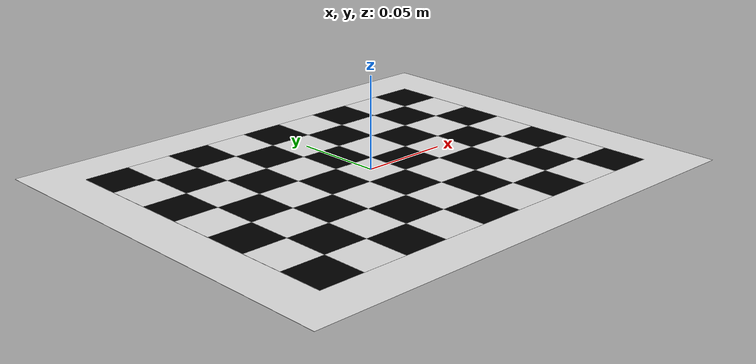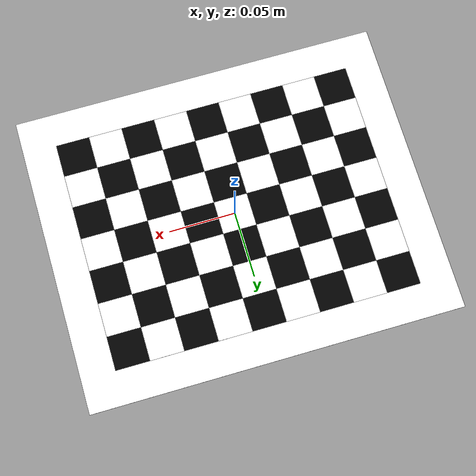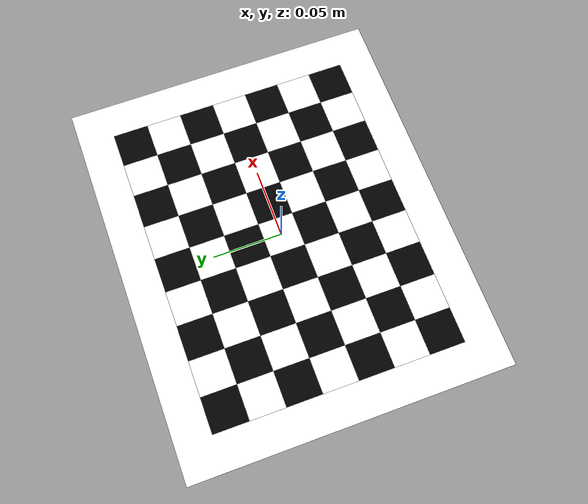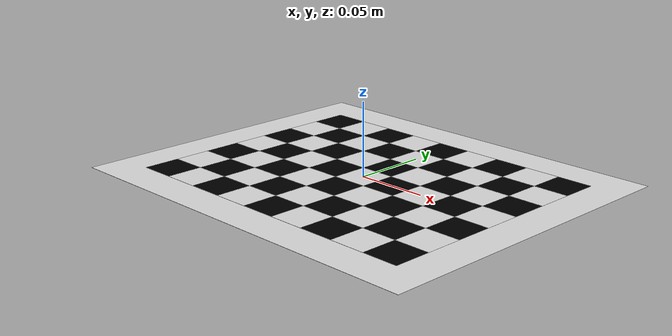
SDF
<?xml version="1.0"?>
<sdf version="1.4">
  <model name="checkerboard_9_7_0_0254">
  <static>true</static>
  <link name="checkerboard_9_7_0_0254_body">
      <visual name="checker_0_0">
        <pose>-0.1016 -0.07619999999999999 0 0 0 0</pose>
        <geometry>
          <box>
            <size>0.0254 0.0254 0.0002</size>
          </box>
        </geometry>
        <material>
          <ambient>0 0 0 1</ambient>
          <diffuse>0 0 0 1</diffuse>
          <specular>0 0 0 1</specular>
          <emissive>0 0 0 1</emissive>
        </material>
      </visual>
      <visual name="checker_0_1">
        <pose>-0.1016 -0.0508 0 0 0 0</pose>
        <geometry>
          <box>
            <size>0.0254 0.0254 0.0002</size>
          </box>
        </geometry>
        <material>
          <ambient>1 1 1 1</ambient>
          <diffuse>1 1 1 1</diffuse>
          <specular>1 1 1 1</specular>
          <emissive>1 1 1 1</emissive>
        </material>
      </visual>
      <visual name="checker_0_2">
        <pose>-0.1016 -0.025399999999999992 0 0 0 0</pose>
        <geometry>
          <box>
            <size>0.0254 0.0254 0.0002</size>
          </box>
        </geometry>
        <material>
          <ambient>0 0 0 1</ambient>
          <diffuse>0 0 0 1</diffuse>
          <specular>0 0 0 1</specular>
          <emissive>0 0 0 1</emissive>
        </material>
      </visual>
      <visual name="checker_0_3">
        <pose>-0.1016 0.0 0 0 0 0</pose>
        <geometry>
          <box>
            <size>0.0254 0.0254 0.0002</size>
          </box>
        </geometry>
        <material>
          <ambient>1 1 1 1</ambient>
          <diffuse>1 1 1 1</diffuse>
          <specular>1 1 1 1</specular>
          <emissive>1 1 1 1</emissive>
        </material>
      </visual>
      <visual name="checker_0_4">
        <pose>-0.1016 0.025400000000000006 0 0 0 0</pose>
        <geometry>
          <box>
            <size>0.0254 0.0254 0.0002</size>
          </box>
        </geometry>
        <material>
          <ambient>0 0 0 1</ambient>
          <diffuse>0 0 0 1</diffuse>
          <specular>0 0 0 1</specular>
          <emissive>0 0 0 1</emissive>
        </material>
      </visual>
      <visual name="checker_0_5">
        <pose>-0.1016 0.0508 0 0 0 0</pose>
        <geometry>
          <box>
            <size>0.0254 0.0254 0.0002</size>
          </box>
        </geometry>
        <material>
          <ambient>1 1 1 1</ambient>
          <diffuse>1 1 1 1</diffuse>
          <specular>1 1 1 1</specular>
          <emissive>1 1 1 1</emissive>
        </material>
      </visual>
      <visual name="checker_0_6">
        <pose>-0.1016 0.07619999999999998 0 0 0 0</pose>
        <geometry>
          <box>
            <size>0.0254 0.0254 0.0002</size>
          </box>
        </geometry>
        <material>
          <ambient>0 0 0 1</ambient>
          <diffuse>0 0 0 1</diffuse>
          <specular>0 0 0 1</specular>
          <emissive>0 0 0 1</emissive>
        </material>
      </visual>
      <visual name="checker_1_0">
        <pose>-0.0762 -0.07619999999999999 0 0 0 0</pose>
        <geometry>
          <box>
            <size>0.0254 0.0254 0.0002</size>
          </box>
        </geometry>
        <material>
          <ambient>1 1 1 1</ambient>
          <diffuse>1 1 1 1</diffuse>
          <specular>1 1 1 1</specular>
          <emissive>1 1 1 1</emissive>
        </material>
      </visual>
      <visual name="checker_1_1">
        <pose>-0.0762 -0.0508 0 0 0 0</pose>
        <geometry>
          <box>
            <size>0.0254 0.0254 0.0002</size>
          </box>
        </geometry>
        <material>
          <ambient>0 0 0 1</ambient>
          <diffuse>0 0 0 1</diffuse>
          <specular>0 0 0 1</specular>
          <emissive>0 0 0 1</emissive>
        </material>
      </visual>
      <visual name="checker_1_2">
        <pose>-0.0762 -0.025399999999999992 0 0 0 0</pose>
        <geometry>
          <box>
            <size>0.0254 0.0254 0.0002</size>
          </box>
        </geometry>
        <material>
          <ambient>1 1 1 1</ambient>
          <diffuse>1 1 1 1</diffuse>
          <specular>1 1 1 1</specular>
          <emissive>1 1 1 1</emissive>
        </material>
      </visual>
      <visual name="checker_1_3">
        <pose>-0.0762 0.0 0 0 0 0</pose>
        <geometry>
          <box>
            <size>0.0254 0.0254 0.0002</size>
          </box>
        </geometry>
        <material>
          <ambient>0 0 0 1</ambient>
          <diffuse>0 0 0 1</diffuse>
          <specular>0 0 0 1</specular>
          <emissive>0 0 0 1</emissive>
        </material>
      </visual>
      <visual name="checker_1_4">
        <pose>-0.0762 0.025400000000000006 0 0 0 0</pose>
        <geometry>
          <box>
            <size>0.0254 0.0254 0.0002</size>
          </box>
        </geometry>
        <material>
          <ambient>1 1 1 1</ambient>
          <diffuse>1 1 1 1</diffuse>
          <specular>1 1 1 1</specular>
          <emissive>1 1 1 1</emissive>
        </material>
      </visual>
      <visual name="checker_1_5">
        <pose>-0.0762 0.0508 0 0 0 0</pose>
        <geometry>
          <box>
            <size>0.0254 0.0254 0.0002</size>
          </box>
        </geometry>
        <material>
          <ambient>0 0 0 1</ambient>
          <diffuse>0 0 0 1</diffuse>
          <specular>0 0 0 1</specular>
          <emissive>0 0 0 1</emissive>
        </material>
      </visual>
      <visual name="checker_1_6">
        <pose>-0.0762 0.07619999999999998 0 0 0 0</pose>
        <geometry>
          <box>
            <size>0.0254 0.0254 0.0002</size>
          </box>
        </geometry>
        <material>
          <ambient>1 1 1 1</ambient>
          <diffuse>1 1 1 1</diffuse>
          <specular>1 1 1 1</specular>
          <emissive>1 1 1 1</emissive>
        </material>
      </visual>
      <visual name="checker_2_0">
        <pose>-0.0508 -0.07619999999999999 0 0 0 0</pose>
        <geometry>
          <box>
            <size>0.0254 0.0254 0.0002</size>
          </box>
        </geometry>
        <material>
          <ambient>0 0 0 1</ambient>
          <diffuse>0 0 0 1</diffuse>
          <specular>0 0 0 1</specular>
          <emissive>0 0 0 1</emissive>
        </material>
      </visual>
      <visual name="checker_2_1">
        <pose>-0.0508 -0.0508 0 0 0 0</pose>
        <geometry>
          <box>
            <size>0.0254 0.0254 0.0002</size>
          </box>
        </geometry>
        <material>
          <ambient>1 1 1 1</ambient>
          <diffuse>1 1 1 1</diffuse>
          <specular>1 1 1 1</specular>
          <emissive>1 1 1 1</emissive>
        </material>
      </visual>
      <visual name="checker_2_2">
        <pose>-0.0508 -0.025399999999999992 0 0 0 0</pose>
        <geometry>
          <box>
            <size>0.0254 0.0254 0.0002</size>
          </box>
        </geometry>
        <material>
          <ambient>0 0 0 1</ambient>
          <diffuse>0 0 0 1</diffuse>
          <specular>0 0 0 1</specular>
          <emissive>0 0 0 1</emissive>
        </material>
      </visual>
      <visual name="checker_2_3">
        <pose>-0.0508 0.0 0 0 0 0</pose>
        <geometry>
          <box>
            <size>0.0254 0.0254 0.0002</size>
          </box>
        </geometry>
        <material>
          <ambient>1 1 1 1</ambient>
          <diffuse>1 1 1 1</diffuse>
          <specular>1 1 1 1</specular>
          <emissive>1 1 1 1</emissive>
        </material>
      </visual>
      <visual name="checker_2_4">
        <pose>-0.0508 0.025400000000000006 0 0 0 0</pose>
        <geometry>
          <box>
            <size>0.0254 0.0254 0.0002</size>
          </box>
        </geometry>
        <material>
          <ambient>0 0 0 1</ambient>
          <diffuse>0 0 0 1</diffuse>
          <specular>0 0 0 1</specular>
          <emissive>0 0 0 1</emissive>
        </material>
      </visual>
      <visual name="checker_2_5">
        <pose>-0.0508 0.0508 0 0 0 0</pose>
        <geometry>
          <box>
            <size>0.0254 0.0254 0.0002</size>
          </box>
        </geometry>
        <material>
          <ambient>1 1 1 1</ambient>
          <diffuse>1 1 1 1</diffuse>
          <specular>1 1 1 1</specular>
          <emissive>1 1 1 1</emissive>
        </material>
      </visual>
      <visual name="checker_2_6">
        <pose>-0.0508 0.07619999999999998 0 0 0 0</pose>
        <geometry>
          <box>
            <size>0.0254 0.0254 0.0002</size>
          </box>
        </geometry>
        <material>
          <ambient>0 0 0 1</ambient>
          <diffuse>0 0 0 1</diffuse>
          <specular>0 0 0 1</specular>
          <emissive>0 0 0 1</emissive>
        </material>
      </visual>
      <visual name="checker_3_0">
        <pose>-0.025400000000000006 -0.07619999999999999 0 0 0 0</pose>
        <geometry>
          <box>
            <size>0.0254 0.0254 0.0002</size>
          </box>
        </geometry>
        <material>
          <ambient>1 1 1 1</ambient>
          <diffuse>1 1 1 1</diffuse>
          <specular>1 1 1 1</specular>
          <emissive>1 1 1 1</emissive>
        </material>
      </visual>
      <visual name="checker_3_1">
        <pose>-0.025400000000000006 -0.0508 0 0 0 0</pose>
        <geometry>
          <box>
            <size>0.0254 0.0254 0.0002</size>
          </box>
        </geometry>
        <material>
          <ambient>0 0 0 1</ambient>
          <diffuse>0 0 0 1</diffuse>
          <specular>0 0 0 1</specular>
          <emissive>0 0 0 1</emissive>
        </material>
      </visual>
      <visual name="checker_3_2">
        <pose>-0.025400000000000006 -0.025399999999999992 0 0 0 0</pose>
        <geometry>
          <box>
            <size>0.0254 0.0254 0.0002</size>
          </box>
        </geometry>
        <material>
          <ambient>1 1 1 1</ambient>
          <diffuse>1 1 1 1</diffuse>
          <specular>1 1 1 1</specular>
          <emissive>1 1 1 1</emissive>
        </material>
      </visual>
      <visual name="checker_3_3">
        <pose>-0.025400000000000006 0.0 0 0 0 0</pose>
        <geometry>
          <box>
            <size>0.0254 0.0254 0.0002</size>
          </box>
        </geometry>
        <material>
          <ambient>0 0 0 1</ambient>
          <diffuse>0 0 0 1</diffuse>
          <specular>0 0 0 1</specular>
          <emissive>0 0 0 1</emissive>
        </material>
      </visual>
      <visual name="checker_3_4">
        <pose>-0.025400000000000006 0.025400000000000006 0 0 0 0</pose>
        <geometry>
          <box>
            <size>0.0254 0.0254 0.0002</size>
          </box>
        </geometry>
        <material>
          <ambient>1 1 1 1</ambient>
          <diffuse>1 1 1 1</diffuse>
          <specular>1 1 1 1</specular>
          <emissive>1 1 1 1</emissive>
        </material>
      </visual>
      <visual name="checker_3_5">
        <pose>-0.025400000000000006 0.0508 0 0 0 0</pose>
        <geometry>
          <box>
            <size>0.0254 0.0254 0.0002</size>
          </box>
        </geometry>
        <material>
          <ambient>0 0 0 1</ambient>
          <diffuse>0 0 0 1</diffuse>
          <specular>0 0 0 1</specular>
          <emissive>0 0 0 1</emissive>
        </material>
      </visual>
      <visual name="checker_3_6">
        <pose>-0.025400000000000006 0.07619999999999998 0 0 0 0</pose>
        <geometry>
          <box>
            <size>0.0254 0.0254 0.0002</size>
          </box>
        </geometry>
        <material>
          <ambient>1 1 1 1</ambient>
          <diffuse>1 1 1 1</diffuse>
          <specular>1 1 1 1</specular>
          <emissive>1 1 1 1</emissive>
        </material>
      </visual>
      <visual name="checker_4_0">
        <pose>0.0 -0.07619999999999999 0 0 0 0</pose>
        <geometry>
          <box>
            <size>0.0254 0.0254 0.0002</size>
          </box>
        </geometry>
        <material>
          <ambient>0 0 0 1</ambient>
          <diffuse>0 0 0 1</diffuse>
          <specular>0 0 0 1</specular>
          <emissive>0 0 0 1</emissive>
        </material>
      </visual>
      <visual name="checker_4_1">
        <pose>0.0 -0.0508 0 0 0 0</pose>
        <geometry>
          <box>
            <size>0.0254 0.0254 0.0002</size>
          </box>
        </geometry>
        <material>
          <ambient>1 1 1 1</ambient>
          <diffuse>1 1 1 1</diffuse>
          <specular>1 1 1 1</specular>
          <emissive>1 1 1 1</emissive>
        </material>
      </visual>
      <visual name="checker_4_2">
        <pose>0.0 -0.025399999999999992 0 0 0 0</pose>
        <geometry>
          <box>
            <size>0.0254 0.0254 0.0002</size>
          </box>
        </geometry>
        <material>
          <ambient>0 0 0 1</ambient>
          <diffuse>0 0 0 1</diffuse>
          <specular>0 0 0 1</specular>
          <emissive>0 0 0 1</emissive>
        </material>
      </visual>
      <visual name="checker_4_3">
        <pose>0.0 0.0 0 0 0 0</pose>
        <geometry>
          <box>
            <size>0.0254 0.0254 0.0002</size>
          </box>
        </geometry>
        <material>
          <ambient>1 1 1 1</ambient>
          <diffuse>1 1 1 1</diffuse>
          <specular>1 1 1 1</specular>
          <emissive>1 1 1 1</emissive>
        </material>
      </visual>
      <visual name="checker_4_4">
        <pose>0.0 0.025400000000000006 0 0 0 0</pose>
        <geometry>
          <box>
            <size>0.0254 0.0254 0.0002</size>
          </box>
        </geometry>
        <material>
          <ambient>0 0 0 1</ambient>
          <diffuse>0 0 0 1</diffuse>
          <specular>0 0 0 1</specular>
          <emissive>0 0 0 1</emissive>
        </material>
      </visual>
      <visual name="checker_4_5">
        <pose>0.0 0.0508 0 0 0 0</pose>
        <geometry>
          <box>
            <size>0.0254 0.0254 0.0002</size>
          </box>
        </geometry>
        <material>
          <ambient>1 1 1 1</ambient>
          <diffuse>1 1 1 1</diffuse>
          <specular>1 1 1 1</specular>
          <emissive>1 1 1 1</emissive>
        </material>
      </visual>
      <visual name="checker_4_6">
        <pose>0.0 0.07619999999999998 0 0 0 0</pose>
        <geometry>
          <box>
            <size>0.0254 0.0254 0.0002</size>
          </box>
        </geometry>
        <material>
          <ambient>0 0 0 1</ambient>
          <diffuse>0 0 0 1</diffuse>
          <specular>0 0 0 1</specular>
          <emissive>0 0 0 1</emissive>
        </material>
      </visual>
      <visual name="checker_5_0">
        <pose>0.025399999999999992 -0.07619999999999999 0 0 0 0</pose>
        <geometry>
          <box>
            <size>0.0254 0.0254 0.0002</size>
          </box>
        </geometry>
        <material>
          <ambient>1 1 1 1</ambient>
          <diffuse>1 1 1 1</diffuse>
          <specular>1 1 1 1</specular>
          <emissive>1 1 1 1</emissive>
        </material>
      </visual>
      <visual name="checker_5_1">
        <pose>0.025399999999999992 -0.0508 0 0 0 0</pose>
        <geometry>
          <box>
            <size>0.0254 0.0254 0.0002</size>
          </box>
        </geometry>
        <material>
          <ambient>0 0 0 1</ambient>
          <diffuse>0 0 0 1</diffuse>
          <specular>0 0 0 1</specular>
          <emissive>0 0 0 1</emissive>
        </material>
      </visual>
      <visual name="checker_5_2">
        <pose>0.025399999999999992 -0.025399999999999992 0 0 0 0</pose>
        <geometry>
          <box>
            <size>0.0254 0.0254 0.0002</size>
          </box>
        </geometry>
        <material>
          <ambient>1 1 1 1</ambient>
          <diffuse>1 1 1 1</diffuse>
          <specular>1 1 1 1</specular>
          <emissive>1 1 1 1</emissive>
        </material>
      </visual>
      <visual name="checker_5_3">
        <pose>0.025399999999999992 0.0 0 0 0 0</pose>
        <geometry>
          <box>
            <size>0.0254 0.0254 0.0002</size>
          </box>
        </geometry>
        <material>
          <ambient>0 0 0 1</ambient>
          <diffuse>0 0 0 1</diffuse>
          <specular>0 0 0 1</specular>
          <emissive>0 0 0 1</emissive>
        </material>
      </visual>
      <visual name="checker_5_4">
        <pose>0.025399999999999992 0.025400000000000006 0 0 0 0</pose>
        <geometry>
          <box>
            <size>0.0254 0.0254 0.0002</size>
          </box>
        </geometry>
        <material>
          <ambient>1 1 1 1</ambient>
          <diffuse>1 1 1 1</diffuse>
          <specular>1 1 1 1</specular>
          <emissive>1 1 1 1</emissive>
        </material>
      </visual>
      <visual name="checker_5_5">
        <pose>0.025399999999999992 0.0508 0 0 0 0</pose>
        <geometry>
          <box>
            <size>0.0254 0.0254 0.0002</size>
          </box>
        </geometry>
        <material>
          <ambient>0 0 0 1</ambient>
          <diffuse>0 0 0 1</diffuse>
          <specular>0 0 0 1</specular>
          <emissive>0 0 0 1</emissive>
        </material>
      </visual>
      <visual name="checker_5_6">
        <pose>0.025399999999999992 0.07619999999999998 0 0 0 0</pose>
        <geometry>
          <box>
            <size>0.0254 0.0254 0.0002</size>
          </box>
        </geometry>
        <material>
          <ambient>1 1 1 1</ambient>
          <diffuse>1 1 1 1</diffuse>
          <specular>1 1 1 1</specular>
          <emissive>1 1 1 1</emissive>
        </material>
      </visual>
      <visual name="checker_6_0">
        <pose>0.05079999999999997 -0.07619999999999999 0 0 0 0</pose>
        <geometry>
          <box>
            <size>0.0254 0.0254 0.0002</size>
          </box>
        </geometry>
        <material>
          <ambient>0 0 0 1</ambient>
          <diffuse>0 0 0 1</diffuse>
          <specular>0 0 0 1</specular>
          <emissive>0 0 0 1</emissive>
        </material>
      </visual>
      <visual name="checker_6_1">
        <pose>0.05079999999999997 -0.0508 0 0 0 0</pose>
        <geometry>
          <box>
            <size>0.0254 0.0254 0.0002</size>
          </box>
        </geometry>
        <material>
          <ambient>1 1 1 1</ambient>
          <diffuse>1 1 1 1</diffuse>
          <specular>1 1 1 1</specular>
          <emissive>1 1 1 1</emissive>
        </material>
      </visual>
      <visual name="checker_6_2">
        <pose>0.05079999999999997 -0.025399999999999992 0 0 0 0</pose>
        <geometry>
          <box>
            <size>0.0254 0.0254 0.0002</size>
          </box>
        </geometry>
        <material>
          <ambient>0 0 0 1</ambient>
          <diffuse>0 0 0 1</diffuse>
          <specular>0 0 0 1</specular>
          <emissive>0 0 0 1</emissive>
        </material>
      </visual>
      <visual name="checker_6_3">
        <pose>0.05079999999999997 0.0 0 0 0 0</pose>
        <geometry>
          <box>
            <size>0.0254 0.0254 0.0002</size>
          </box>
        </geometry>
        <material>
          <ambient>1 1 1 1</ambient>
          <diffuse>1 1 1 1</diffuse>
          <specular>1 1 1 1</specular>
          <emissive>1 1 1 1</emissive>
        </material>
      </visual>
      <visual name="checker_6_4">
        <pose>0.05079999999999997 0.025400000000000006 0 0 0 0</pose>
        <geometry>
          <box>
            <size>0.0254 0.0254 0.0002</size>
          </box>
        </geometry>
        <material>
          <ambient>0 0 0 1</ambient>
          <diffuse>0 0 0 1</diffuse>
          <specular>0 0 0 1</specular>
          <emissive>0 0 0 1</emissive>
        </material>
      </visual>
      <visual name="checker_6_5">
        <pose>0.05079999999999997 0.0508 0 0 0 0</pose>
        <geometry>
          <box>
            <size>0.0254 0.0254 0.0002</size>
          </box>
        </geometry>
        <material>
          <ambient>1 1 1 1</ambient>
          <diffuse>1 1 1 1</diffuse>
          <specular>1 1 1 1</specular>
          <emissive>1 1 1 1</emissive>
        </material>
      </visual>
      <visual name="checker_6_6">
        <pose>0.05079999999999997 0.07619999999999998 0 0 0 0</pose>
        <geometry>
          <box>
            <size>0.0254 0.0254 0.0002</size>
          </box>
        </geometry>
        <material>
          <ambient>0 0 0 1</ambient>
          <diffuse>0 0 0 1</diffuse>
          <specular>0 0 0 1</specular>
          <emissive>0 0 0 1</emissive>
        </material>
      </visual>
      <visual name="checker_7_0">
        <pose>0.07619999999999998 -0.07619999999999999 0 0 0 0</pose>
        <geometry>
          <box>
            <size>0.0254 0.0254 0.0002</size>
          </box>
        </geometry>
        <material>
          <ambient>1 1 1 1</ambient>
          <diffuse>1 1 1 1</diffuse>
          <specular>1 1 1 1</specular>
          <emissive>1 1 1 1</emissive>
        </material>
      </visual>
      <visual name="checker_7_1">
        <pose>0.07619999999999998 -0.0508 0 0 0 0</pose>
        <geometry>
          <box>
            <size>0.0254 0.0254 0.0002</size>
          </box>
        </geometry>
        <material>
          <ambient>0 0 0 1</ambient>
          <diffuse>0 0 0 1</diffuse>
          <specular>0 0 0 1</specular>
          <emissive>0 0 0 1</emissive>
        </material>
      </visual>
      <visual name="checker_7_2">
        <pose>0.07619999999999998 -0.025399999999999992 0 0 0 0</pose>
        <geometry>
          <box>
            <size>0.0254 0.0254 0.0002</size>
          </box>
        </geometry>
        <material>
          <ambient>1 1 1 1</ambient>
          <diffuse>1 1 1 1</diffuse>
          <specular>1 1 1 1</specular>
          <emissive>1 1 1 1</emissive>
        </material>
      </visual>
      <visual name="checker_7_3">
        <pose>0.07619999999999998 0.0 0 0 0 0</pose>
        <geometry>
          <box>
            <size>0.0254 0.0254 0.0002</size>
          </box>
        </geometry>
        <material>
          <ambient>0 0 0 1</ambient>
          <diffuse>0 0 0 1</diffuse>
          <specular>0 0 0 1</specular>
          <emissive>0 0 0 1</emissive>
        </material>
      </visual>
      <visual name="checker_7_4">
        <pose>0.07619999999999998 0.025400000000000006 0 0 0 0</pose>
        <geometry>
          <box>
            <size>0.0254 0.0254 0.0002</size>
          </box>
        </geometry>
        <material>
          <ambient>1 1 1 1</ambient>
          <diffuse>1 1 1 1</diffuse>
          <specular>1 1 1 1</specular>
          <emissive>1 1 1 1</emissive>
        </material>
      </visual>
      <visual name="checker_7_5">
        <pose>0.07619999999999998 0.0508 0 0 0 0</pose>
        <geometry>
          <box>
            <size>0.0254 0.0254 0.0002</size>
          </box>
        </geometry>
        <material>
          <ambient>0 0 0 1</ambient>
          <diffuse>0 0 0 1</diffuse>
          <specular>0 0 0 1</specular>
          <emissive>0 0 0 1</emissive>
        </material>
      </visual>
      <visual name="checker_7_6">
        <pose>0.07619999999999998 0.07619999999999998 0 0 0 0</pose>
        <geometry>
          <box>
            <size>0.0254 0.0254 0.0002</size>
          </box>
        </geometry>
        <material>
          <ambient>1 1 1 1</ambient>
          <diffuse>1 1 1 1</diffuse>
          <specular>1 1 1 1</specular>
          <emissive>1 1 1 1</emissive>
        </material>
      </visual>
      <visual name="checker_8_0">
        <pose>0.10159999999999998 -0.07619999999999999 0 0 0 0</pose>
        <geometry>
          <box>
            <size>0.0254 0.0254 0.0002</size>
          </box>
        </geometry>
        <material>
          <ambient>0 0 0 1</ambient>
          <diffuse>0 0 0 1</diffuse>
          <specular>0 0 0 1</specular>
          <emissive>0 0 0 1</emissive>
        </material>
      </visual>
      <visual name="checker_8_1">
        <pose>0.10159999999999998 -0.0508 0 0 0 0</pose>
        <geometry>
          <box>
            <size>0.0254 0.0254 0.0002</size>
          </box>
        </geometry>
        <material>
          <ambient>1 1 1 1</ambient>
          <diffuse>1 1 1 1</diffuse>
          <specular>1 1 1 1</specular>
          <emissive>1 1 1 1</emissive>
        </material>
      </visual>
      <visual name="checker_8_2">
        <pose>0.10159999999999998 -0.025399999999999992 0 0 0 0</pose>
        <geometry>
          <box>
            <size>0.0254 0.0254 0.0002</size>
          </box>
        </geometry>
        <material>
          <ambient>0 0 0 1</ambient>
          <diffuse>0 0 0 1</diffuse>
          <specular>0 0 0 1</specular>
          <emissive>0 0 0 1</emissive>
        </material>
      </visual>
      <visual name="checker_8_3">
        <pose>0.10159999999999998 0.0 0 0 0 0</pose>
        <geometry>
          <box>
            <size>0.0254 0.0254 0.0002</size>
          </box>
        </geometry>
        <material>
          <ambient>1 1 1 1</ambient>
          <diffuse>1 1 1 1</diffuse>
          <specular>1 1 1 1</specular>
          <emissive>1 1 1 1</emissive>
        </material>
      </visual>
      <visual name="checker_8_4">
        <pose>0.10159999999999998 0.025400000000000006 0 0 0 0</pose>
        <geometry>
          <box>
            <size>0.0254 0.0254 0.0002</size>
          </box>
        </geometry>
        <material>
          <ambient>0 0 0 1</ambient>
          <diffuse>0 0 0 1</diffuse>
          <specular>0 0 0 1</specular>
          <emissive>0 0 0 1</emissive>
        </material>
      </visual>
      <visual name="checker_8_5">
        <pose>0.10159999999999998 0.0508 0 0 0 0</pose>
        <geometry>
          <box>
            <size>0.0254 0.0254 0.0002</size>
          </box>
        </geometry>
        <material>
          <ambient>1 1 1 1</ambient>
          <diffuse>1 1 1 1</diffuse>
          <specular>1 1 1 1</specular>
          <emissive>1 1 1 1</emissive>
        </material>
      </visual>
      <visual name="checker_8_6">
        <pose>0.10159999999999998 0.07619999999999998 0 0 0 0</pose>
        <geometry>
          <box>
            <size>0.0254 0.0254 0.0002</size>
          </box>
        </geometry>
        <material>
          <ambient>0 0 0 1</ambient>
          <diffuse>0 0 0 1</diffuse>
          <specular>0 0 0 1</specular>
          <emissive>0 0 0 1</emissive>
        </material>
      </visual>
      <visual name="checker_backdrop">
        <pose>0 0 0 0 0 0</pose>
        <geometry>
          <box>
            <size>0.2794 0.2286 0.0001</size>
          </box>
        </geometry>
        <material>
          <ambient>1 1 1 1</ambient>
          <diffuse>1 1 1 1</diffuse>
          <specular>1 1 1 1</specular>
          <emissive>1 1 1 1</emissive>
        </material>
      </visual>
    </link>
  </model>
</sdf>
